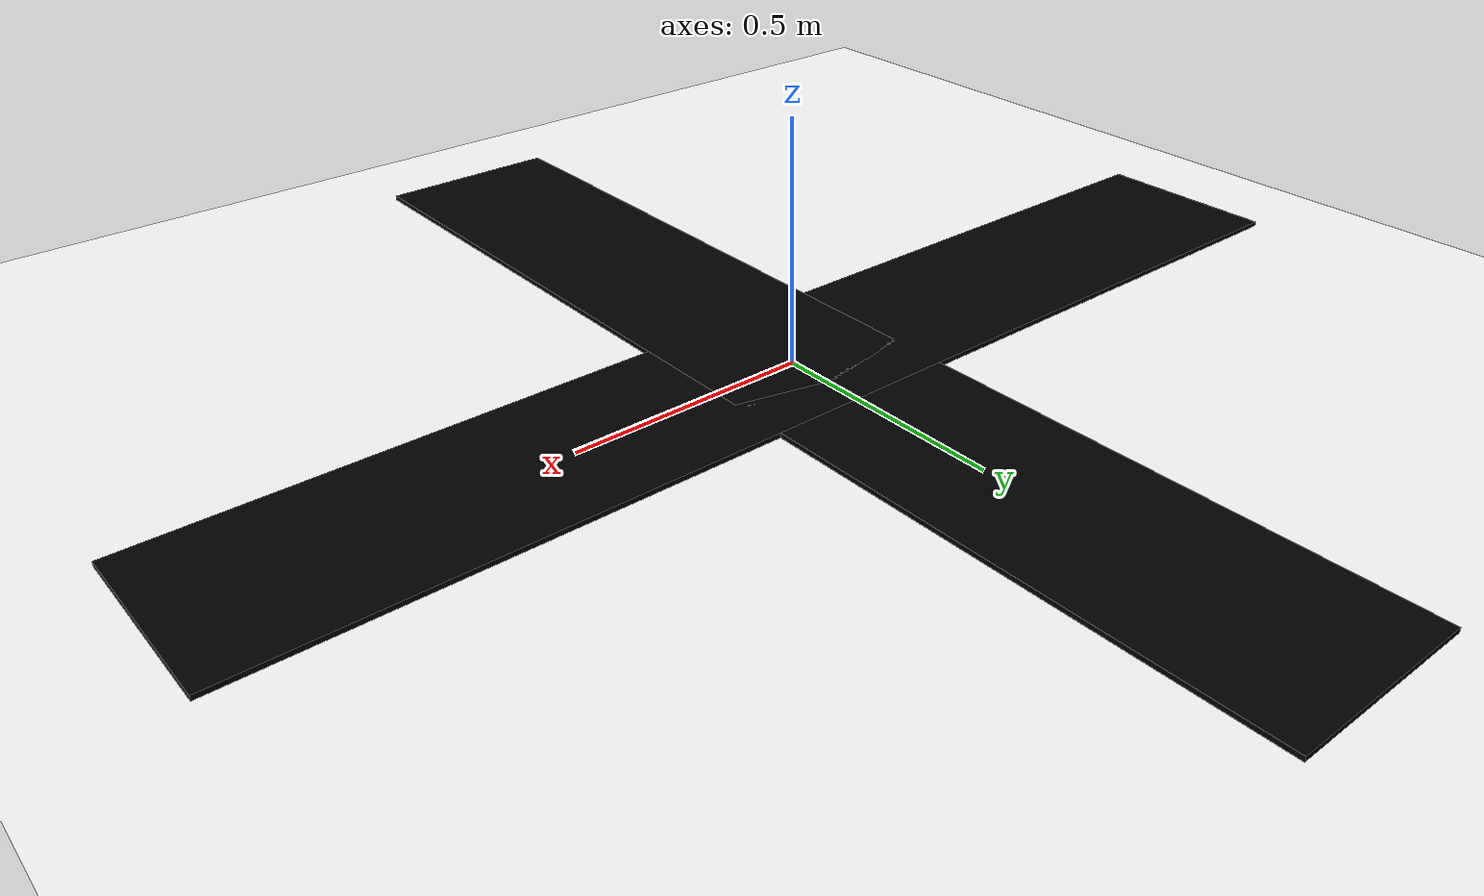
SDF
<?xml version="1.0"?>
<sdf version="1.6">
  <world name="cross_world">

    <physics type="ode">
      <gravity>0 0 -9.8</gravity>
    </physics>

    <include>
      <uri>model://sun</uri>
    </include>

    <model name="ground_plane">
      <static>true</static>

      <link name="link">
        <collision name="collision">
          <geometry>
            <plane>
              <normal>0 0 1</normal>
              <size>200 200</size>
            </plane>
          </geometry>
        </collision>

        <visual name="visual">
          <geometry>
            <plane>
              <normal>0 0 1</normal>
              <size>200 200</size>
            </plane>
          </geometry>

          <material>
            <ambient>1 1 1 1</ambient>
            <diffuse>1 1 1 1</diffuse>
            <specular>0.1 0.1 0.1 1</specular>
          </material>

        </visual>
      </link>
    </model>

    <model name="horizontal_cross">
      <static>true</static>
      <link name="link">

        <visual name="visual">
          <geometry>
            <box>
              <size>2.5 0.4 0.01</size>
            </box>
          </geometry>

          <material>
            <ambient>0 0 0 1</ambient>
            <diffuse>0 0 0 1</diffuse>
            <specular>0.1 0.1 0.1 1</specular>
          </material>

        </visual>
      </link>
      <pose>0 0 0.01 0 0 0</pose>
    </model>

    <model name="vertical_cross">
      <static>true</static>
      <link name="link">

        <visual name="visual">
          <geometry>
            <box>
              <size>0.4 2.5 0.01</size>
            </box>
          </geometry>

          <material>
            <ambient>0 0 0 1</ambient>
            <diffuse>0 0 0 1</diffuse>
            <specular>0.1 0.1 0.1 1</specular>
          </material>

        </visual>
      </link>
      <pose>0 0 0.01 0 0 0</pose>
    </model>
  </world>
</sdf>
